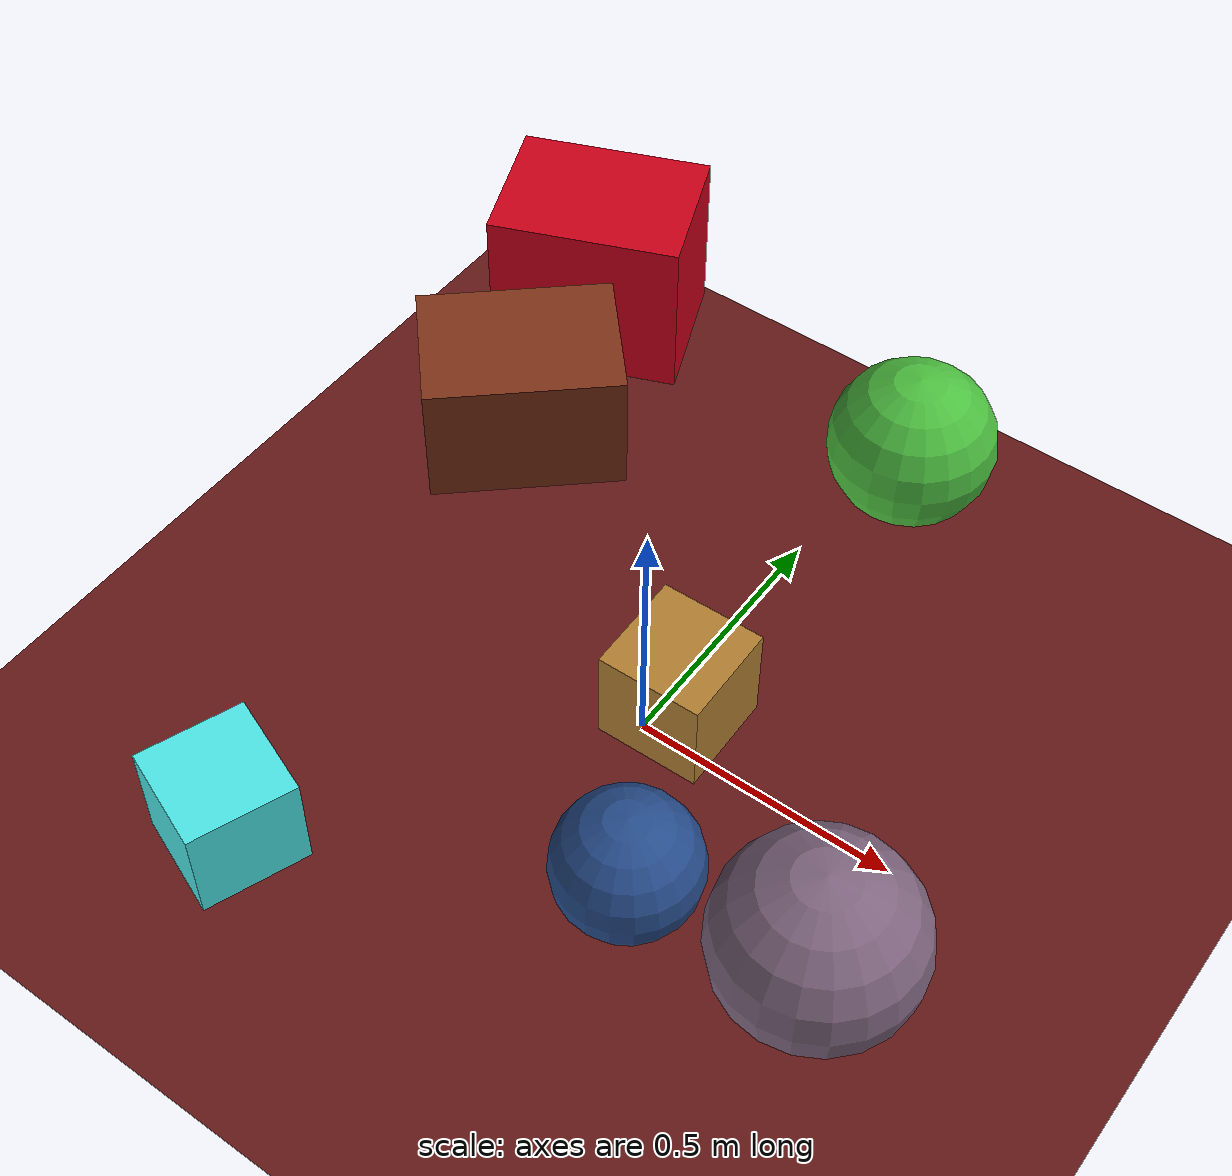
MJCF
<mujoco>
   <asset>
<texture type="skybox" builtin="gradient" rgb1="0.1 0.1 0.3" rgb2="1.0 1.0 0.0" width="256" height="256"/>
<texture name="gradient_0" builtin="gradient" rgb1="0.0 0.6 0.3" rgb2="0.6 0.9 0.2" width="200" height="200"/>
<texture name="gradient_1" builtin="gradient" rgb1="0.2 0.4 0.6" rgb2="0.8 0.4 0.4" width="200" height="200"/>
<texture name="gradient_2" builtin="gradient" rgb1="0.1 0.2 0.4" rgb2="0.2 0.4 0.7" width="200" height="200"/>
<texture name="flat_3" builtin="flat" rgb1="0.7 0.5 0.2" rgb2="0.7 0.5 0.2"  width="200" height="200"/>
<texture name="flat_4" builtin="flat" rgb1="0.8 0.0 0.1" rgb2="0.8 0.0 0.1"  width="200" height="200"/>
<texture name="flat_5" builtin="flat" rgb1="0.3 0.9 0.9" rgb2="0.3 0.9 0.9"  width="200" height="200"/>
<texture name="flat_6" builtin="flat" rgb1="0.5 0.2 0.1" rgb2="0.5 0.2 0.1"  width="200" height="200"/><material name="gradient_0_mat" reflectance="0" texture="gradient_0" texuniform="true"/>
<material name="gradient_1_mat" reflectance="0" texture="gradient_1" texuniform="true"/>
<material name="gradient_2_mat" reflectance="0" texture="gradient_2" texuniform="true"/>
<material name="flat_3_mat" reflectance="0" texture="flat_3" texuniform="true"/>
<material name="flat_4_mat" reflectance="0" texture="flat_4" texuniform="true"/>
<material name="flat_5_mat" reflectance="0" texture="flat_5" texuniform="true"/>
<material name="flat_6_mat" reflectance="0" texture="flat_6" texuniform="true"/>
   </asset>

   <worldbody>
      <light diffuse=".9 .9 .9" pos="0 0 3" dir="0 0 -1"/>
     <geom type="plane" size="1 1 0.1" rgba="0.4 0.1 0.1 1"/>
<geom type="sphere" pos="0.09 0.73 0.16" size="0.16 0.16 0.16" material="gradient_0_mat" euler="0 0 73" />
<geom type="sphere" pos="0.52 -0.27 0.18" size="0.18 0.18 0.18" material="gradient_1_mat" euler="0 0 2" />
<geom type="sphere" pos="0.19 -0.31 0.13" size="0.13 0.13 0.13" material="gradient_2_mat" euler="0 0 5" />
<geom type="box" pos="0.04 0.05 0.1" size="0.1 0.1 0.1" material="flat_3_mat" euler="0 0 1" />
<geom type="box" pos="-0.67 0.78 0.17" size="0.19 0.14 0.17" material="flat_4_mat" euler="0 0 22" />
<geom type="box" pos="-0.42 -0.6 0.1" size="0.1 0.1 0.1" material="flat_5_mat" euler="0 0 69" />
<geom type="box" pos="-0.6 0.43 0.13" size="0.19 0.14 0.13" material="flat_6_mat" euler="0 0 42" /><camera euler="60 0 180" fovy="60" name="camera1" pos="-0.2 -1.5 1"></camera>   </worldbody>
</mujoco>
